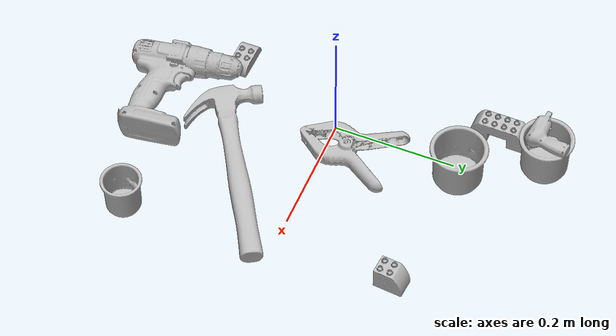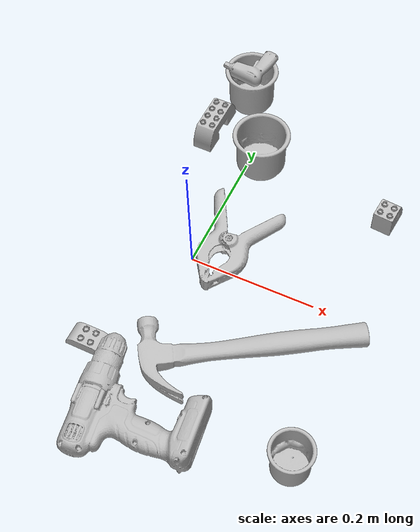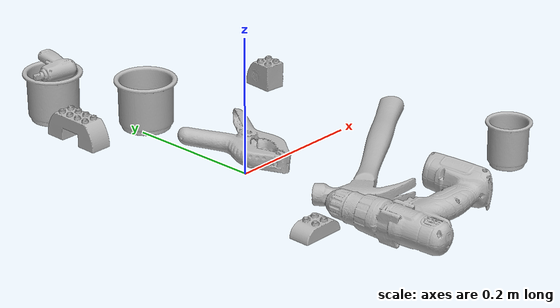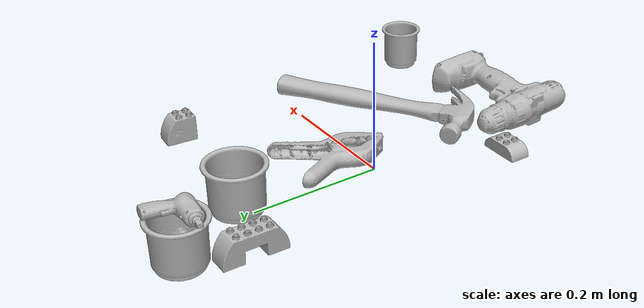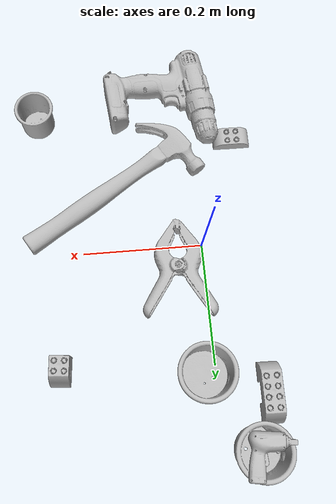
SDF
<sdf version="1.4">
  <world name="default">
    <light name="light1" type="point">
      <pose>0 0 1 0 0 0</pose>
      <diffuse>3 3 3 1</diffuse>
      <specular>3 3 3 1</specular>
    </light>
    <light name="light2" type="point">
      <pose>0 0.5 2 0 0 0</pose>
      <diffuse>1 1 1 1</diffuse>
      <specular>1 1 1 1</specular>
    </light>
    <light name="light3" type="point">
      <pose>0 0.5 2 0 0 0</pose>
      <diffuse>3 3 3 1</diffuse>
      <specular>3 3 3 1</specular>
    </light>
    <scene>
      <ambient>0.7 0.7 0.7</ambient>
    </scene>
    <model name="cup1">
      <link name="link_cup1">
        <collision name="default">
          <geometry>
            <mesh>
              <uri>model://g_cups/collision_meshes/collision.obj</uri>
              <scale>1.0 1.0 1.0</scale>
            </mesh>
          </geometry>
          <surface>
            <friction>
              <ode>
                <mu>0.5</mu>
                <mu2>0.5</mu2>
              </ode>
            </friction>
          <contact>
        <ode>
            <max_vel>0</max_vel>
            <min_depth>0.0001</min_depth>
            <kp>1e8</kp>
        </ode>
    </contact></surface>
        </collision>
        <visual name="default">
          <geometry>
            <mesh>
              <uri>model://g_cups/visual_meshes/visual.dae</uri>
              <scale>1.0 1.0 1.0</scale>
            </mesh>
          </geometry>
        </visual>
        <inertial>
          <mass>0.057625629007816315</mass>
          <pose>-0.0007946282275952399 -4.206500670989044e-05 -0.0021329375449568033 -0.21382697289054745 -0.3141031271963666 0.3112149002706268</pose>
          <inertia>
            <ixx>6.726202e-05</ixx>
            <iyy>6.7033216e-05</iyy>
            <izz>6.967186e-05</izz>
            <ixy>0</ixy>
            <ixz>0</ixz>
            <iyz>0</iyz>
          </inertia>
        </inertial>
      </link>
      <pose>-0.051083531230688095 0.3319810926914215 0.037203043699264526 7.0278426193806045e-06 1.2927489543804626e-05 1.9331463661157806</pose>
    </model>
    <model name="cup2">
      <link name="link_cup2">
        <collision name="default">
          <geometry>
            <mesh>
              <uri>model://c_cups/collision_meshes/collision.obj</uri>
              <scale>1.0 1.0 1.0</scale>
            </mesh>
          </geometry>
          <surface>
            <friction>
              <ode>
                <mu>0.5</mu>
                <mu2>0.5</mu2>
              </ode>
            </friction>
          <contact>
        <ode>
            <max_vel>0</max_vel>
            <min_depth>0.0001</min_depth>
            <kp>1e8</kp>
        </ode>
    </contact></surface>
        </collision>
        <visual name="default">
          <geometry>
            <mesh>
              <uri>model://c_cups/visual_meshes/visual.dae</uri>
              <scale>1.0 1.0 1.0</scale>
            </mesh>
          </geometry>
        </visual>
        <inertial>
          <mass>0.03477548435330391</mass>
          <pose>0.0007237261161208153 0.0020153902005404234 -0.0012750983005389571 0.30215732346046187 0.013461711857135551 -0.08771879968331305</pose>
          <inertia>
            <ixx>2.5862058e-05</ixx>
            <iyy>2.540504e-05</iyy>
            <izz>2.2871589e-05</izz>
            <ixy>0</ixy>
            <ixz>0</ixz>
            <iyz>0</iyz>
          </inertia>
        </inertial>
      </link>
      <pose>0.26748180389404297 -0.24514296650886536 0.03345901146531105 -7.74299409844144e-07 -1.8587546000753819e-07 0.9202022633341838</pose>
    </model>
    <model name="cup3">
      <link name="link_cup3">
        <collision name="default">
          <geometry>
            <mesh>
              <uri>model://h_cups/collision_meshes/collision.obj</uri>
              <scale>1.0 1.0 1.0</scale>
            </mesh>
          </geometry>
          <surface>
            <friction>
              <ode>
                <mu>0.5</mu>
                <mu2>0.5</mu2>
              </ode>
            </friction>
          <contact>
        <ode>
            <max_vel>0</max_vel>
            <min_depth>0.0001</min_depth>
            <kp>1e8</kp>
        </ode>
    </contact></surface>
        </collision>
        <visual name="default">
          <geometry>
            <mesh>
              <uri>model://h_cups/visual_meshes/visual.dae</uri>
              <scale>1.0 1.0 1.0</scale>
            </mesh>
          </geometry>
        </visual>
        <inertial>
          <mass>0.050017159432172775</mass>
          <pose>-2.702731035242323e-05 0.0002301866770721972 -0.0018405388109385967 -0.024362003715272553 0.06545245272055236 0.12885201823743497</pose>
          <inertia>
            <ixx>6.459484e-05</ixx>
            <iyy>6.382401e-05</iyy>
            <izz>6.774227e-05</izz>
            <ixy>0</ixy>
            <ixz>0</ixz>
            <iyz>0</iyz>
          </inertia>
        </inertial>
      </link>
      <pose>0.019334986805915833 0.2132938802242279 0.037758007645606995 8.840733833786494e-08 1.8923993503867653e-07 -1.081766876779263</pose>
    </model>
    <model name="toy1">
      <link name="link_toy1">
        <collision name="default">
          <geometry>
            <mesh>
              <uri>model://e_lego_duplo/collision_meshes/collision.obj</uri>
              <scale>1.0 1.0 1.0</scale>
            </mesh>
          </geometry>
          <surface>
            <friction>
              <ode>
                <mu>0.5</mu>
                <mu2>0.5</mu2>
              </ode>
            </friction>
          <contact>
        <ode>
            <max_vel>0</max_vel>
            <min_depth>0.0001</min_depth>
            <kp>1e8</kp>
        </ode>
    </contact></surface>
        </collision>
        <visual name="default">
          <geometry>
            <mesh>
              <uri>model://e_lego_duplo/visual_meshes/visual.dae</uri>
              <scale>1.0 1.0 1.0</scale>
            </mesh>
          </geometry>
        </visual>
        <inertial>
          <mass>0.09100330621004105</mass>
          <pose>0.0003256048948969692 0.00023485418932978064 0.0019521461799740791 -0.02256778535698338 -6.825395529084007e-05 -0.0076251622764869605</pose>
          <inertia>
            <ixx>1.897719e-05</ixx>
            <iyy>7.788726e-05</iyy>
            <izz>7.584653e-05</izz>
            <ixy>0</ixy>
            <ixz>0</ixz>
            <iyz>0</iyz>
          </inertia>
        </inertial>
      </link>
      <pose>-0.08062990754842758 0.24837446212768555 0.021808985620737076 -2.1237663073471752e-07 1.0818976665472532e-07 1.5580151310105272</pose>
    </model>
    <model name="toy2">
      <link name="link_toy2">
        <collision name="default">
          <geometry>
            <mesh>
              <uri>model://b_toy_airplane/collision_meshes/collision.obj</uri>
              <scale>0.5 0.5 0.5</scale>
            </mesh>
          </geometry>
          <surface>
            <friction>
              <ode>
                <mu>0.5</mu>
                <mu2>0.5</mu2>
              </ode>
            </friction>
          <contact>
        <ode>
            <max_vel>0</max_vel>
            <min_depth>0.0001</min_depth>
            <kp>1e8</kp>
        </ode>
    </contact></surface>
        </collision>
        <visual name="default">
          <geometry>
            <mesh>
              <uri>model://b_toy_airplane/visual_meshes/visual.dae</uri>
              <scale>0.5 0.5 0.5</scale>
            </mesh>
          </geometry>
        </visual>
        <inertial>
          <mass>0.06363805383443832</mass>
          <pose>0.002540681976824999 0.0020077931694686413 0.004771532956510782 -0.0400181041712346 -0.04022185546555606 -0.5601502891427816</pose>
          <inertia>
            <ixx>2.9536302e-05</ixx>
            <iyy>1.1805946e-05</iyy>
            <izz>3.6746103e-05</izz>
            <ixy>0</ixy>
            <ixz>0</ixz>
            <iyz>0</iyz>
          </inertia>
        </inertial>
      </link>
      <pose>-0.04602283239364624 0.3286993205547333 0.07554157078266144 -0.0069342155049373815 0.003577476823447474 3.0157160817021382</pose>
    </model>
    <model name="toy3">
      <link name="link_toy3">
        <collision name="default">
          <geometry>
            <mesh>
              <uri>model://d_lego_duplo/collision_meshes/collision.obj</uri>
              <scale>1.0 1.0 1.0</scale>
            </mesh>
          </geometry>
          <surface>
            <friction>
              <ode>
                <mu>0.5</mu>
                <mu2>0.5</mu2>
              </ode>
            </friction>
          <contact>
        <ode>
            <max_vel>0</max_vel>
            <min_depth>0.0001</min_depth>
            <kp>1e8</kp>
        </ode>
    </contact></surface>
        </collision>
        <visual name="default">
          <geometry>
            <mesh>
              <uri>model://d_lego_duplo/visual_meshes/visual.dae</uri>
              <scale>1.0 1.0 1.0</scale>
            </mesh>
          </geometry>
        </visual>
        <inertial>
          <mass>0.05334000289440155</mass>
          <pose>0.002830563811585307 0.0001636617089388892 0.0008589810458943248 0.0801090676593232 -0.3835525121717052 0.0010296416750687279</pose>
          <inertia>
            <ixx>1.0325837e-05</ixx>
            <iyy>1.4655165e-05</iyy>
            <izz>1.4132847e-05</izz>
            <ixy>0</ixy>
            <ixz>0</ixz>
            <iyz>0</iyz>
          </inertia>
        </inertial>
      </link>
      <pose>0.24504397809505463 0.19172723591327667 0.02173992618918419 -4.422550362391346e-06 -8.80959936469498e-06 -1.6537597852617687</pose>
    </model>
    <model name="toy4">
      <link name="link_toy4">
        <collision name="default">
          <geometry>
            <mesh>
              <uri>model://a_lego_duplo/collision_meshes/collision.obj</uri>
              <scale>1.0 1.0 1.0</scale>
            </mesh>
          </geometry>
          <surface>
            <friction>
              <ode>
                <mu>0.5</mu>
                <mu2>0.5</mu2>
              </ode>
            </friction>
          <contact>
        <ode>
            <max_vel>0</max_vel>
            <min_depth>0.0001</min_depth>
            <kp>1e8</kp>
        </ode>
    </contact></surface>
        </collision>
        <visual name="default">
          <geometry>
            <mesh>
              <uri>model://a_lego_duplo/visual_meshes/visual.dae</uri>
              <scale>1.0 1.0 1.0</scale>
            </mesh>
          </geometry>
        </visual>
        <inertial>
          <mass>0.02371947281062603</mass>
          <pose>-0.00011337659088894725 0.00018517536227591336 0.00036926098982803524 -0.014117032318495473 -0.00012566219654468525 6.139472672246545e-05</pose>
          <inertia>
            <ixx>3.0410272e-06</ixx>
            <iyy>6.8125664e-06</iyy>
            <izz>8.438875e-06</izz>
            <ixy>0</ixy>
            <ixz>0</ixz>
            <iyz>0</iyz>
          </inertia>
        </inertial>
      </link>
      <pose>-0.07108867168426514 -0.19095154106616974 0.012111357413232327 -4.4022696824225035e-06 -3.0421629389590893e-05 -3.1412209459810136</pose>
    </model>
    <model name="hardware1">
      <link name="link_hardware1">
        <collision name="default">
          <geometry>
            <mesh>
              <uri>model://hammer/collision_meshes/collision.obj</uri>
              <scale>1.0 1.0 1.0</scale>
            </mesh>
          </geometry>
          <surface>
            <friction>
              <ode>
                <mu>0.5</mu>
                <mu2>0.5</mu2>
              </ode>
            </friction>
          <contact>
        <ode>
            <max_vel>0</max_vel>
            <min_depth>0.0001</min_depth>
            <kp>1e8</kp>
        </ode>
    </contact></surface>
        </collision>
        <visual name="default">
          <geometry>
            <mesh>
              <uri>model://hammer/visual_meshes/visual.dae</uri>
              <scale>1.0 1.0 1.0</scale>
            </mesh>
          </geometry>
        </visual>
        <inertial>
          <mass>0.21542595326900482</mass>
          <pose>0.009415775537490845 -0.011892358772456646 -0.00012350629549473524 0.02315578421630864 -0.004792165572519315 -0.012760317567756519</pose>
          <inertia>
            <ixx>9.2278024e-05</ixx>
            <iyy>0.0025004656</iyy>
            <izz>0.002572105</izz>
            <ixy>0</ixy>
            <ixz>0</ixz>
            <iyz>0</iyz>
          </inertia>
        </inertial>
      </link>
      <pose>0.14663633704185486 -0.12055796384811401 0.01626737415790558 -0.005199109490991909 -0.0013802303579101391 -2.5840470919381247</pose>
    </model>
    <model name="hardware2">
      <link name="link_hardware2">
        <collision name="default">
          <geometry>
            <mesh>
              <uri>model://large_clamp/collision_meshes/collision.obj</uri>
              <scale>1.0 1.0 1.0</scale>
            </mesh>
          </geometry>
          <surface>
            <friction>
              <ode>
                <mu>0.5</mu>
                <mu2>0.5</mu2>
              </ode>
            </friction>
          <contact>
        <ode>
            <max_vel>0</max_vel>
            <min_depth>0.0001</min_depth>
            <kp>1e8</kp>
        </ode>
    </contact></surface>
        </collision>
        <visual name="default">
          <geometry>
            <mesh>
              <uri>model://large_clamp/visual_meshes/visual.dae</uri>
              <scale>1.0 1.0 1.0</scale>
            </mesh>
          </geometry>
        </visual>
        <inertial>
          <mass>0.16898278892040253</mass>
          <pose>0.006369357462972403 0.00035856629256159067 -0.00018398034444544464 -0.002133075920149734 0.009671594117503977 0.026633212091596442</pose>
          <inertia>
            <ixx>0.00014908903</ixx>
            <iyy>0.00028312797</iyy>
            <izz>0.00040958088</izz>
            <ixy>0</ixy>
            <ixz>0</ixz>
            <iyz>0</iyz>
          </inertia>
        </inertial>
      </link>
      <pose>0.043853431940078735 0.039176106452941895 0.01850743405520916 -0.014410056285731783 0.046922229674409385 -1.6387854203943086</pose>
    </model>
    <model name="hardware3">
      <link name="link_hardware3">
        <collision name="default">
          <geometry>
            <mesh>
              <uri>model://power_drill/collision_meshes/collision.obj</uri>
              <scale>1.0 1.0 1.0</scale>
            </mesh>
          </geometry>
          <surface>
            <friction>
              <ode>
                <mu>0.5</mu>
                <mu2>0.5</mu2>
              </ode>
            </friction>
          <contact>
        <ode>
            <max_vel>0</max_vel>
            <min_depth>0.0001</min_depth>
            <kp>1e8</kp>
        </ode>
    </contact></surface>
        </collision>
        <visual name="default">
          <geometry>
            <mesh>
              <uri>model://power_drill/visual_meshes/visual.dae</uri>
              <scale>1.0 1.0 1.0</scale>
            </mesh>
          </geometry>
        </visual>
        <inertial>
          <mass>0.7224003672599792</mass>
          <pose>-0.014780545607209206 0.014369428157806396 0.0012414171360433102 0.0046091635101465946 0.00407302394444766 -0.18362692290061644</pose>
          <inertia>
            <ixx>0.002943816</ixx>
            <iyy>0.0011582379</iyy>
            <izz>0.0038878287</izz>
            <ixy>0</ixy>
            <ixz>0</ixz>
            <iyz>0</iyz>
          </inertia>
        </inertial>
      </link>
      <pose>0.04937947541475296 -0.2589882016181946 0.02731245383620262 -0.030306004922841603 -0.04725290914553441 1.6967324918741198</pose>
    </model>
  <physics type="ode">
      <max_contacts>50</max_contacts>
      <ode>
        <solver>
          <type>quick</type>
          <iters>75</iters>
        </solver>
        <constraints>
          <contact_max_correcting_vel>0</contact_max_correcting_vel>
          <contact_surface_layer>0</contact_surface_layer>
        </constraints>
      </ode>
    </physics></world>
</sdf>
